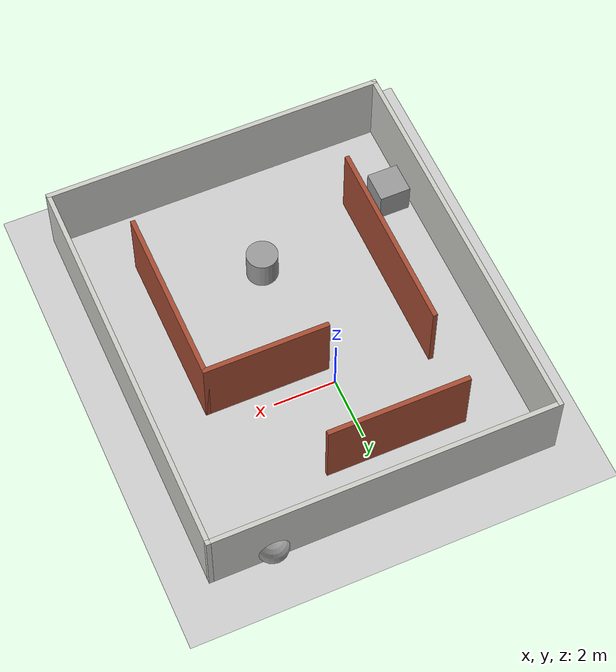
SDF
<sdf version="1.7">
 <world name="default">
  <light name="sun" type="directional">
   <pose>0 0 10 0 -0 0</pose>
   <diffuse>0.8 0.8 0.8 1</diffuse>
   <specular>0.2 0.2 0.2 1</specular>
   <attenuation>
    <range>1000</range>
    <constant>0.9</constant>
    <linear>0.01</linear>
    <quadratic>0.001</quadratic>
   </attenuation>
   <direction>-0.5 0.1 -0.9</direction>
   <spot><inner_angle>0</inner_angle><outer_angle>0</outer_angle><falloff>0</falloff></spot>
  </light>
  <model name="ground_plane">
   <static>1</static>
   <link name="link">
    <collision name="collision">
     <geometry><plane><normal>0 0 1</normal><size>100 100</size></plane></geometry>
     <surface><friction><ode><mu>100</mu><mu2>50</mu2></ode></friction></surface>
    </collision>
    <visual name="visual">
     <cast_shadows>0</cast_shadows>
     <geometry><plane><normal>0 0 1</normal><size>100 100</size></plane></geometry>
     <material>
      <script><uri>file://media/materials/scripts/gazebo.material</uri><name>Gazebo/Grey</name></script>
     </material>
    </visual>
   </link>
  </model>
  <gravity>0 0 -9.8</gravity>
  <magnetic_field>6e-06 2.3e-05 -4.2e-05</magnetic_field>
  <atmosphere type="adiabatic"/>
  <physics type="ode">
   <max_step_size>0.001</max_step_size>
   <real_time_factor>1</real_time_factor>
   <real_time_update_rate>1000</real_time_update_rate>
  </physics>
  <scene><ambient>0.4 0.4 0.4 1</ambient><background>0.7 0.7 0.7 1</background><shadows>1</shadows></scene>
  <audio><device>default</device></audio>
  <spherical_coordinates>
   <surface_model>EARTH_WGS84</surface_model>
   <latitude_deg>0</latitude_deg>
   <longitude_deg>0</longitude_deg>
   <elevation>0</elevation>
   <heading_deg>0</heading_deg>
  </spherical_coordinates>
  <model name="default">
   <pose>0.465 -1.81823 0 0 -0 0</pose>
   <link name="Wall_0">
    <collision name="Wall_0_Collision">
     <geometry><box><size>11 0.15 2.5</size></box></geometry>
     <pose>0 0 1.25 0 -0 0</pose>
    </collision>
    <visual name="Wall_0_Visual">
     <pose>0 0 1.25 0 -0 0</pose>
     <geometry><box><size>11 0.15 2.5</size></box></geometry>
     <material>
      <script><uri>file://media/materials/scripts/gazebo.material</uri><name>Gazebo/CeilingTiled</name></script>
      <ambient>1 1 1 1</ambient>
     </material>
     <meta><layer>0</layer></meta>
    </visual>
    <pose>0 6.3 0 0 -0 3.14159</pose>
   </link>
   <link name="Wall_1">
    <collision name="Wall_1_Collision">
     <geometry><box><size>12.75 0.15 2.5</size></box></geometry>
     <pose>0 0 1.25 0 -0 0</pose>
    </collision>
    <visual name="Wall_1_Visual">
     <pose>0 0 1.25 0 -0 0</pose>
     <geometry><box><size>12.75 0.15 2.5</size></box></geometry>
     <material>
      <script><uri>file://media/materials/scripts/gazebo.material</uri><name>Gazebo/CeilingTiled</name></script>
      <ambient>1 1 1 1</ambient>
     </material>
     <meta><layer>0</layer></meta>
    </visual>
    <pose>-5.425 0 0 0 -0 -1.5708</pose>
   </link>
   <link name="Wall_10">
    <collision name="Wall_10_Collision">
     <geometry><box><size>5.75 0.15 2.5</size></box></geometry>
     <pose>0 0 1.25 0 -0 0</pose>
    </collision>
    <visual name="Wall_10_Visual">
     <pose>0 0 1.25 0 -0 0</pose>
     <geometry><box><size>5.75 0.15 2.5</size></box></geometry>
     <material>
      <script><uri>file://media/materials/scripts/gazebo.material</uri><name>Gazebo/Bricks</name></script>
      <ambient>1 1 1 1</ambient>
     </material>
     <meta><layer>0</layer></meta>
    </visual>
    <pose>3.43402 -1.55066 0 0 -0 -1.5708</pose>
   </link>
   <link name="Wall_2">
    <collision name="Wall_2_Collision">
     <geometry><box><size>11 0.15 2.5</size></box></geometry>
     <pose>0 0 1.25 0 -0 0</pose>
    </collision>
    <visual name="Wall_2_Visual">
     <pose>0 0 1.25 0 -0 0</pose>
     <geometry><box><size>11 0.15 2.5</size></box></geometry>
     <material>
      <script><uri>file://media/materials/scripts/gazebo.material</uri><name>Gazebo/CeilingTiled</name></script>
      <ambient>1 1 1 1</ambient>
     </material>
     <meta><layer>0</layer></meta>
    </visual>
    <pose>0 -6.3 0 0 -0 0</pose>
   </link>
   <link name="Wall_3">
    <collision name="Wall_3_Collision">
     <geometry><box><size>12.75 0.15 2.5</size></box></geometry>
     <pose>0 0 1.25 0 -0 0</pose>
    </collision>
    <visual name="Wall_3_Visual">
     <pose>0 0 1.25 0 -0 0</pose>
     <geometry><box><size>12.75 0.15 2.5</size></box></geometry>
     <material>
      <script><uri>file://media/materials/scripts/gazebo.material</uri><name>Gazebo/CeilingTiled</name></script>
      <ambient>1 1 1 1</ambient>
     </material>
     <meta><layer>0</layer></meta>
    </visual>
    <pose>5.425 0 0 0 -0 1.5708</pose>
   </link>
   <link name="Wall_5">
    <collision name="Wall_5_Collision">
     <geometry><box><size>4.5 0.15 2.5</size></box></geometry>
     <pose>0 0 1.25 0 -0 0</pose>
    </collision>
    <visual name="Wall_5_Visual">
     <pose>0 0 1.25 0 -0 0</pose>
     <geometry><box><size>4.5 0.15 2.5</size></box></geometry>
     <material>
      <script><uri>file://media/materials/scripts/gazebo.material</uri><name>Gazebo/Bricks</name></script>
      <ambient>1 1 1 1</ambient>
     </material>
     <meta><layer>0</layer></meta>
    </visual>
    <pose>-1.20823 4.5225 0 0 -0 0</pose>
   </link>
   <link name="Wall_7">
    <collision name="Wall_7_Collision">
     <geometry><box><size>6.25 0.15 2.5</size></box></geometry>
     <pose>0 0 1.25 0 -0 0</pose>
    </collision>
    <visual name="Wall_7_Visual">
     <pose>0 0 1.25 0 -0 0</pose>
     <geometry><box><size>6.25 0.15 2.5</size></box></geometry>
     <material>
      <script><uri>file://media/materials/scripts/gazebo.material</uri><name>Gazebo/Bricks</name></script>
      <ambient>1 1 1 1</ambient>
     </material>
     <meta><layer>0</layer></meta>
    </visual>
    <pose>-3.44441 -0.882951 0 0 -0 -1.5708</pose>
   </link>
   <link name="Wall_9">
    <collision name="Wall_9_Collision">
     <geometry><box><size>4 0.15 2.5</size></box></geometry>
     <pose>0 0 1.25 0 -0 0</pose>
    </collision>
    <visual name="Wall_9_Visual">
     <pose>0 0 1.25 0 -0 0</pose>
     <geometry><box><size>4 0.15 2.5</size></box></geometry>
     <material>
      <script><uri>file://media/materials/scripts/gazebo.material</uri><name>Gazebo/Bricks</name></script>
      <ambient>1 1 1 1</ambient>
     </material>
     <meta><layer>0</layer></meta>
    </visual>
    <pose>1.50902 1.24934 0 0 -0 0</pose>
   </link>
   <static>1</static>
  </model>
  <model name="default.world">
   <link name="link">
    <inertial>
     <mass>1</mass>
     <inertia><ixx>0.145833</ixx><ixy>0</ixy><ixz>0</ixz><iyy>0.145833</iyy><iyz>0</iyz><izz>0.125</izz></inertia>
    </inertial>
    <visual name="visual">
     <geometry><cylinder><radius>0.5</radius><length>1</length></cylinder></geometry>
     <material>
      <script><name>Gazebo/Grey</name><uri>file://media/materials/scripts/gazebo.material</uri></script>
      <shader type="pixel"/>
     </material>
    </visual>
    <collision name="collision">
     <geometry><cylinder><radius>0.5</radius><length>1</length></cylinder></geometry>
     <surface>
      <friction>
       <ode><mu>1</mu><mu2>1</mu2><fdir1>0 0 0</fdir1><slip1>0</slip1><slip2>0</slip2></ode>
       <torsional>
        <coefficient>1</coefficient>
        <patch_radius>0</patch_radius>
        <surface_radius>0</surface_radius>
        <use_patch_radius>1</use_patch_radius>
        <ode><slip>0</slip></ode>
       </torsional>
      </friction>
      <bounce><restitution_coefficient>0</restitution_coefficient><threshold>1e+06</threshold></bounce>
      <contact>
       <collide_without_contact>0</collide_without_contact>
       <collide_without_contact_bitmask>1</collide_without_contact_bitmask>
       <collide_bitmask>1</collide_bitmask>
       <ode>
        <soft_cfm>0</soft_cfm>
        <soft_erp>0.2</soft_erp>
        <kp>1e+13</kp>
        <kd>1</kd>
        <max_vel>0.01</max_vel>
        <min_depth>0</min_depth>
       </ode>
       <bullet>
        <split_impulse>1</split_impulse>
        <split_impulse_penetration_threshold>-0.01</split_impulse_penetration_threshold>
        <soft_cfm>0</soft_cfm>
        <soft_erp>0.2</soft_erp>
        <kp>1e+13</kp>
        <kd>1</kd>
       </bullet>
      </contact>
     </surface>
    </collision>
   </link>
   <link name="link_6">
    <inertial>
     <mass>1</mass>
     <inertia><ixx>0.1</ixx><ixy>0</ixy><ixz>0</ixz><iyy>0.1</iyy><iyz>0</iyz><izz>0.1</izz></inertia>
    </inertial>
    <pose>3.50523 8.91789 0 0 -0 0</pose>
    <visual name="visual">
     <geometry><sphere><radius>0.5</radius></sphere></geometry>
     <material>
      <lighting>1</lighting>
      <script><uri>file://media/materials/scripts/gazebo.material</uri><name>Gazebo/Grey</name></script>
      <shader type="pixel"/>
     </material>
    </visual>
    <collision name="collision">
     <geometry><sphere><radius>0.5</radius></sphere></geometry>
     <surface>
      <friction>
       <ode><mu>1</mu><mu2>1</mu2><fdir1>0 0 0</fdir1><slip1>0</slip1><slip2>0</slip2></ode>
       <torsional>
        <coefficient>1</coefficient>
        <patch_radius>0</patch_radius>
        <surface_radius>0</surface_radius>
        <use_patch_radius>1</use_patch_radius>
        <ode><slip>0</slip></ode>
       </torsional>
      </friction>
      <bounce><restitution_coefficient>0</restitution_coefficient><threshold>1e+06</threshold></bounce>
      <contact>
       <collide_without_contact>0</collide_without_contact>
       <collide_without_contact_bitmask>1</collide_without_contact_bitmask>
       <collide_bitmask>1</collide_bitmask>
       <ode>
        <soft_cfm>0</soft_cfm>
        <soft_erp>0.2</soft_erp>
        <kp>1e+13</kp>
        <kd>1</kd>
        <max_vel>0.01</max_vel>
        <min_depth>0</min_depth>
       </ode>
       <bullet>
        <split_impulse>1</split_impulse>
        <split_impulse_penetration_threshold>-0.01</split_impulse_penetration_threshold>
        <soft_cfm>0</soft_cfm>
        <soft_erp>0.2</soft_erp>
        <kp>1e+13</kp>
        <kd>1</kd>
       </bullet>
      </contact>
     </surface>
    </collision>
   </link>
   <link name="link_7">
    <inertial>
     <mass>1</mass>
     <inertia>
      <ixx>0.166667</ixx>
      <ixy>0</ixy>
      <ixz>0</ixz>
      <iyy>0.166667</iyy>
      <iyz>0</iyz>
      <izz>0.166667</izz>
     </inertia>
    </inertial>
    <pose>-4.69428 -0.891786 0 0 -0 0</pose>
    <visual name="visual">
     <geometry><box><size>1 1 1</size></box></geometry>
     <material>
      <lighting>1</lighting>
      <script><uri>file://media/materials/scripts/gazebo.material</uri><name>Gazebo/Grey</name></script>
      <shader type="pixel"/>
     </material>
    </visual>
    <collision name="collision">
     <geometry><box><size>1 1 1</size></box></geometry>
     <surface>
      <friction>
       <ode><mu>1</mu><mu2>1</mu2><fdir1>0 0 0</fdir1><slip1>0</slip1><slip2>0</slip2></ode>
       <torsional>
        <coefficient>1</coefficient>
        <patch_radius>0</patch_radius>
        <surface_radius>0</surface_radius>
        <use_patch_radius>1</use_patch_radius>
        <ode><slip>0</slip></ode>
       </torsional>
      </friction>
      <bounce><restitution_coefficient>0</restitution_coefficient><threshold>1e+06</threshold></bounce>
      <contact>
       <collide_without_contact>0</collide_without_contact>
       <collide_without_contact_bitmask>1</collide_without_contact_bitmask>
       <collide_bitmask>1</collide_bitmask>
       <ode>
        <soft_cfm>0</soft_cfm>
        <soft_erp>0.2</soft_erp>
        <kp>1e+13</kp>
        <kd>1</kd>
        <max_vel>0.01</max_vel>
        <min_depth>0</min_depth>
       </ode>
       <bullet>
        <split_impulse>1</split_impulse>
        <split_impulse_penetration_threshold>-0.01</split_impulse_penetration_threshold>
        <soft_cfm>0</soft_cfm>
        <soft_erp>0.2</soft_erp>
        <kp>1e+13</kp>
        <kd>1</kd>
       </bullet>
      </contact>
     </surface>
    </collision>
   </link>
   <static>0</static>
   <pose>0.445893 -4.48372 0.5 0 -0 0</pose>
  </model>
 </world>
</sdf>
